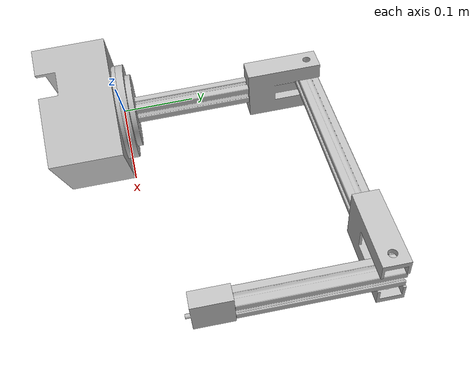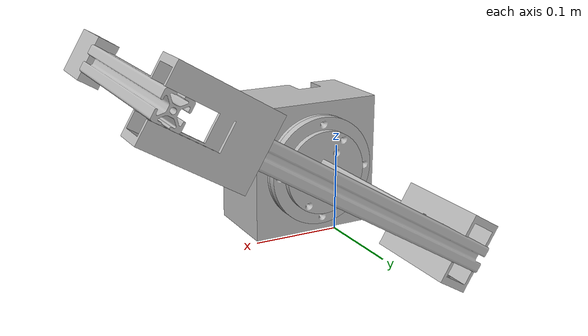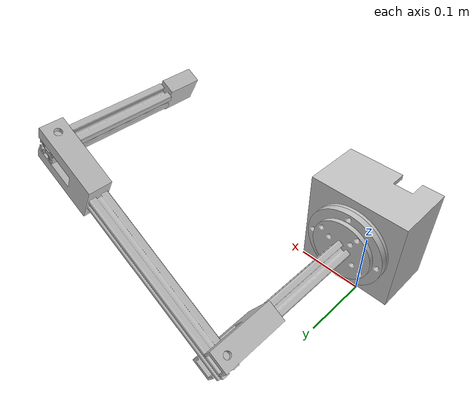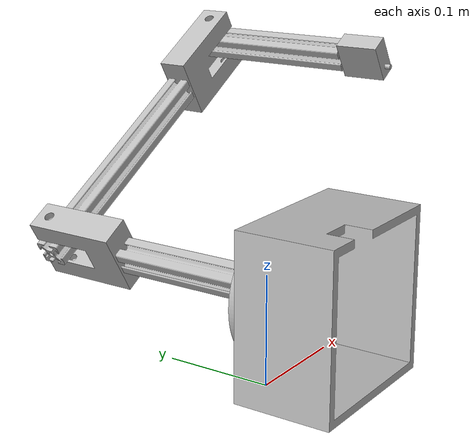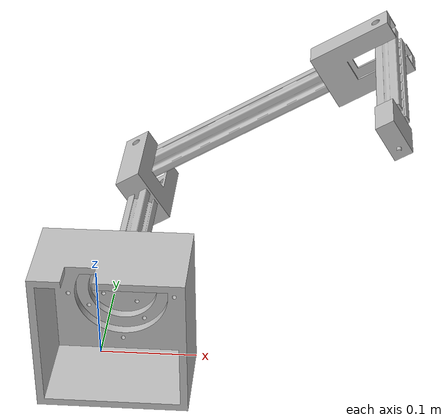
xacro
<?xml version="1.0" ?>
<robot name="assembly_robotic_arm_URDF" xmlns:xacro="http://www.ros.org/wiki/xacro">

<xacro:include filename="materials.xacro" />
<link name="base_link">
  <inertial>
    <origin xyz="0.025568174865929133 -0.037161526078087564 0.07690409937696371" rpy="0 0 0"/>
    <mass value="3.600452366591152"/>
    <inertia ixx="0.014209" iyy="0.022664" izz="0.014399" ixy="4.9e-05" iyz="-0.000128" ixz="-8.8e-05"/>
  </inertial>
  <visual>
    <origin xyz="0 0 0" rpy="0 0 0"/>
    <geometry>
      <mesh filename="package://robot_manipulation/meshes/base_link.stl" scale="0.001 0.001 0.001"/>
    </geometry>
    <material name="silver"/>
  </visual>
  <collision>
    <origin xyz="0 0 0" rpy="0 0 0"/>
    <geometry>
      <mesh filename="package://robot_manipulation/meshes/base_link.stl" scale="0.001 0.001 0.001"/>
    </geometry>
  </collision>
</link>

<link name="inner-ring_1">
  <inertial>
    <origin xyz="-8.7442074626215e-08 -0.004780885684227354 -8.464326463342164e-08" rpy="0 0 0"/>
    <mass value="0.23504555627740456"/>
    <inertia ixx="0.000206" iyy="0.000409" izz="0.000206" ixy="0.0" iyz="0.0" ixz="0.0"/>
  </inertial>
  <visual>
    <origin xyz="-0.025231 -0.014307 -0.077778" rpy="0 0 0"/>
    <geometry>
      <mesh filename="package://robot_manipulation/meshes/inner-ring_1.stl" scale="0.001 0.001 0.001"/>
    </geometry>
    <material name="silver"/>
  </visual>
  <collision>
    <origin xyz="-0.025231 -0.014307 -0.077778" rpy="0 0 0"/>
    <geometry>
      <mesh filename="package://robot_manipulation/meshes/inner-ring_1.stl" scale="0.001 0.001 0.001"/>
    </geometry>
  </collision>
</link>

<link name="outer-ring_1">
  <inertial>
    <origin xyz="-8.744207051145092e-08 0.004729729493174445 -8.464319313505886e-08" rpy="0 0 0"/>
    <mass value="0.3586130491956171"/>
    <inertia ixx="0.000547" iyy="0.001089" izz="0.000547" ixy="0.0" iyz="-0.0" ixz="0.0"/>
  </inertial>
  <visual>
    <origin xyz="-0.025231 -0.004807 -0.077778" rpy="0 0 0"/>
    <geometry>
      <mesh filename="package://robot_manipulation/meshes/outer-ring_1.stl" scale="0.001 0.001 0.001"/>
    </geometry>
    <material name="silver"/>
  </visual>
  <collision>
    <origin xyz="-0.025231 -0.004807 -0.077778" rpy="0 0 0"/>
    <geometry>
      <mesh filename="package://robot_manipulation/meshes/outer-ring_1.stl" scale="0.001 0.001 0.001"/>
    </geometry>
  </collision>
</link>

<link name="RDS_Servo_1">
  <inertial>
    <origin xyz="-8.74420677393628e-08 0.037445726417167785 -8.464323357493253e-08" rpy="0 0 0"/>
    <mass value="0.5488799503959932"/>
    <inertia ixx="0.000781" iyy="0.000382" izz="0.000518" ixy="-0.0" iyz="-0.0" ixz="-2.5e-05"/>
  </inertial>
  <visual>
    <origin xyz="-0.025231 -0.171307 -0.077778" rpy="0 0 0"/>
    <geometry>
      <mesh filename="package://robot_manipulation/meshes/RDS_Servo_1.stl" scale="0.001 0.001 0.001"/>
    </geometry>
    <material name="silver"/>
  </visual>
  <collision>
    <origin xyz="-0.025231 -0.171307 -0.077778" rpy="0 0 0"/>
    <geometry>
      <mesh filename="package://robot_manipulation/meshes/RDS_Servo_1.stl" scale="0.001 0.001 0.001"/>
    </geometry>
  </collision>
</link>

<link name="base-linkage_1">
  <inertial>
    <origin xyz="1.1941234743215873e-05 0.07499992129458155 -1.2318574447722774e-06" rpy="0 0 0"/>
    <mass value="0.11126416203116223"/>
    <inertia ixx="0.000216" iyy="1.4e-05" izz="0.000216" ixy="0.0" iyz="0.0" ixz="-0.0"/>
  </inertial>
  <visual>
    <origin xyz="-0.025231 -0.021307 -0.077778" rpy="0 0 0"/>
    <geometry>
      <mesh filename="package://robot_manipulation/meshes/base-linkage_1.stl" scale="0.001 0.001 0.001"/>
    </geometry>
    <material name="silver"/>
  </visual>
  <collision>
    <origin xyz="-0.025231 -0.021307 -0.077778" rpy="0 0 0"/>
    <geometry>
      <mesh filename="package://robot_manipulation/meshes/base-linkage_1.stl" scale="0.001 0.001 0.001"/>
    </geometry>
  </collision>
</link>

<link name="bearing-base-interface_1">
  <inertial>
    <origin xyz="2.980935244515162e-05 0.003476899701562078 -2.935998278344454e-06" rpy="0 0 0"/>
    <mass value="0.37789173913859087"/>
    <inertia ixx="0.000215" iyy="0.000427" izz="0.000215" ixy="0.0" iyz="-0.0" ixz="-0.0"/>
  </inertial>
  <visual>
    <origin xyz="-0.025231 -0.014307 -0.077778" rpy="0 0 0"/>
    <geometry>
      <mesh filename="package://robot_manipulation/meshes/bearing-base-interface_1.stl" scale="0.001 0.001 0.001"/>
    </geometry>
    <material name="silver"/>
  </visual>
  <collision>
    <origin xyz="-0.025231 -0.014307 -0.077778" rpy="0 0 0"/>
    <geometry>
      <mesh filename="package://robot_manipulation/meshes/bearing-base-interface_1.stl" scale="0.001 0.001 0.001"/>
    </geometry>
  </collision>
</link>

<link name="20kg_Servo_1">
  <inertial>
    <origin xyz="2.9679660253356666e-06 -0.02268054621276394 3.17635125227228e-05" rpy="0 0 0"/>
    <mass value="0.28545564068627766"/>
    <inertia ixx="8.7e-05" iyy="4.9e-05" izz="5.8e-05" ixy="0.0" iyz="0.0" ixz="-3e-06"/>
  </inertial>
  <visual>
    <origin xyz="0.284609 -0.091053 -0.107318" rpy="0 0 0"/>
    <geometry>
      <mesh filename="package://robot_manipulation/meshes/20kg_Servo_1.stl" scale="0.001 0.001 0.001"/>
    </geometry>
    <material name="silver"/>
  </visual>
  <collision>
    <origin xyz="0.284609 -0.091053 -0.107318" rpy="0 0 0"/>
    <geometry>
      <mesh filename="package://robot_manipulation/meshes/20kg_Servo_1.stl" scale="0.001 0.001 0.001"/>
    </geometry>
  </collision>
</link>

<link name="lower_1">
  <inertial>
    <origin xyz="0.03225199837408904 0.17854870535469428 -0.285857828694417" rpy="0 0 0"/>
    <mass value="0.1298002433404817"/>
    <inertia ixx="0.00034" iyy="1.7e-05" izz="0.00034" ixy="-0.0" iyz="0.0" ixz="-0.0"/>
  </inertial>
  <visual>
    <origin xyz="0.316849 0.0 -0.393175" rpy="0 0 0"/>
    <geometry>
      <mesh filename="package://robot_manipulation/meshes/lower_1.stl" scale="0.001 0.001 0.001"/>
    </geometry>
    <material name="silver"/>
  </visual>
  <collision>
    <origin xyz="0.316849 0.0 -0.393175" rpy="0 0 0"/>
    <geometry>
      <mesh filename="package://robot_manipulation/meshes/lower_1.stl" scale="0.001 0.001 0.001"/>
    </geometry>
  </collision>
</link>

<link name="RDS_Servo_2">
  <inertial>
    <origin xyz="-0.03727688581107813 -2.55079023125937e-07 0.003555508152516984" rpy="0 0 0"/>
    <mass value="0.5488799503959932"/>
    <inertia ixx="0.000383" iyy="0.000784" izz="0.000515" ixy="0.0" iyz="-0.0" ixz="1.3e-05"/>
  </inertial>
  <visual>
    <origin xyz="0.204282 -0.251998 -0.099662" rpy="0 0 0"/>
    <geometry>
      <mesh filename="package://robot_manipulation/meshes/RDS_Servo_2.stl" scale="0.001 0.001 0.001"/>
    </geometry>
    <material name="silver"/>
  </visual>
  <collision>
    <origin xyz="0.204282 -0.251998 -0.099662" rpy="0 0 0"/>
    <geometry>
      <mesh filename="package://robot_manipulation/meshes/RDS_Servo_2.stl" scale="0.001 0.001 0.001"/>
    </geometry>
  </collision>
</link>

<link name="upper_1">
  <inertial>
    <origin xyz="0.1484516478586171 -0.029701340692169453 0.014305457848267394" rpy="0 0 0"/>
    <mass value="0.18540415998295687"/>
    <inertia ixx="3.3e-05" iyy="0.000977" izz="0.000969" ixy="0.0" iyz="-0.0" ixz="9e-05"/>
  </inertial>
  <visual>
    <origin xyz="0.228319 -0.281687 -0.073491" rpy="0 0 0"/>
    <geometry>
      <mesh filename="package://robot_manipulation/meshes/upper_1.stl" scale="0.001 0.001 0.001"/>
    </geometry>
    <material name="silver"/>
  </visual>
  <collision>
    <origin xyz="0.228319 -0.281687 -0.073491" rpy="0 0 0"/>
    <geometry>
      <mesh filename="package://robot_manipulation/meshes/upper_1.stl" scale="0.001 0.001 0.001"/>
    </geometry>
  </collision>
</link>

<joint name="joint1_base_yaw" type="continuous">
  <origin xyz="0.0 0.0095 0.0" rpy="0 0 0"/>
  <parent link="outer-ring_1"/>
  <child link="inner-ring_1"/>
  <axis xyz="-0.0 1.0 -0.0"/>
</joint>

<joint name="rigid_11" type="fixed">
  <origin xyz="0.025231 0.004807 0.077778" rpy="0 0 0"/>
  <parent link="base_link"/>
  <child link="outer-ring_1"/>
</joint>

<joint name="rigid_12" type="fixed">
  <origin xyz="0.0 0.15 0.0" rpy="0 0 0"/>
  <parent link="base-linkage_1"/>
  <child link="RDS_Servo_1"/>
</joint>

<joint name="rigid_13" type="fixed">
  <origin xyz="0.0 0.007 0.0" rpy="0 0 0"/>
  <parent link="bearing-base-interface_1"/>
  <child link="base-linkage_1"/>
</joint>

<joint name="rigid_14" type="fixed">
  <origin xyz="0.0 0.0 0.0" rpy="0 0 0"/>
  <parent link="inner-ring_1"/>
  <child link="bearing-base-interface_1"/>
</joint>

<joint name="rigid_15" type="fixed">
  <origin xyz="0.03224 0.091053 -0.285857" rpy="0 0 0"/>
  <parent link="lower_1"/>
  <child link="20kg_Servo_1"/>
</joint>

<joint name="joint2_shoulder" type="continuous">
  <origin xyz="-0.112567 -0.251998 0.293513" rpy="0 0 0"/>
  <parent link="RDS_Servo_2"/>
  <child link="lower_1"/>
  <axis xyz="0.094942 0.0 0.995483"/>
</joint>

<joint name="rigid_18" type="fixed">
  <origin xyz="0.024037 -0.029689 0.026171" rpy="0 0 0"/>
  <parent link="upper_1"/>
  <child link="RDS_Servo_2"/>
</joint>

<joint name="joint3_elbow" type="continuous">
  <origin xyz="-0.25355 0.11038 -0.004287" rpy="0 0 0"/>
  <parent link="RDS_Servo_1"/>
  <child link="upper_1"/>
  <axis xyz="0.094942 0.0 0.995483"/>
</joint>

<gazebo>
  <plugin
    filename="libignition-gazebo-joint-position-controller-system.so"
    name="ignition::gazebo::systems::JointPositionController">
    <joint_name>joint1_base_yaw</joint_name>
    <p_gain>10.0</p_gain>
    <topic>/model/assembly_robotic_arm/joint/joint1_base_yaw/0/cmd_pos</topic>
  </plugin>

  <plugin
    filename="libignition-gazebo-joint-position-controller-system.so"
    name="ignition::gazebo::systems::JointPositionController">
    <joint_name>joint2_shoulder</joint_name>
    <p_gain>10.0</p_gain>
    <topic>/model/assembly_robotic_arm/joint/joint2_shoulder/0/cmd_pos</topic>
  </plugin>

  <plugin
    filename="libignition-gazebo-joint-position-controller-system.so"
    name="ignition::gazebo::systems::JointPositionController">
    <joint_name>joint3_elbow</joint_name>
    <p_gain>8.0</p_gain>
    <topic>/model/assembly_robotic_arm/joint/joint3_elbow/0/cmd_pos</topic>
  </plugin>
</gazebo>

</robot>

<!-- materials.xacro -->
<robot xmlns:xacro="http://www.ros.org/wiki/xacro">
  <material name="silver">
    <color rgba="0.75 0.75 0.75 1.0"/>
  </material>
</robot>
